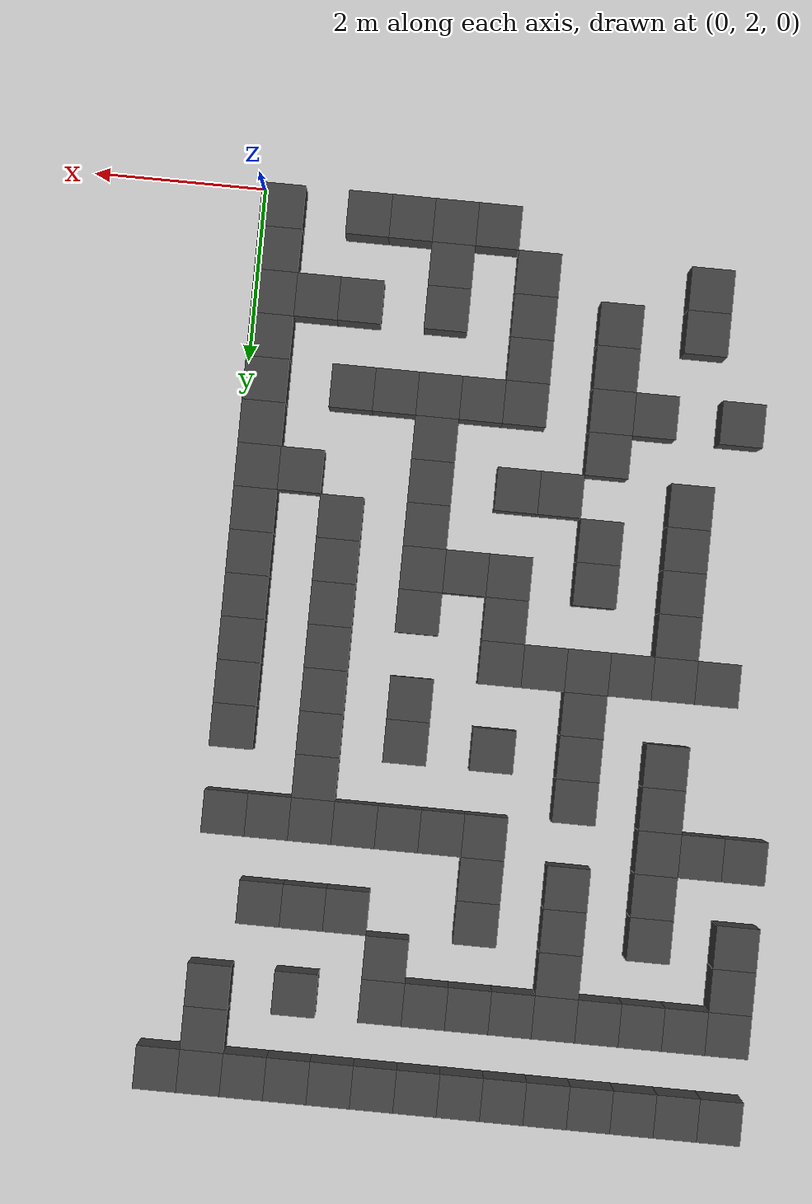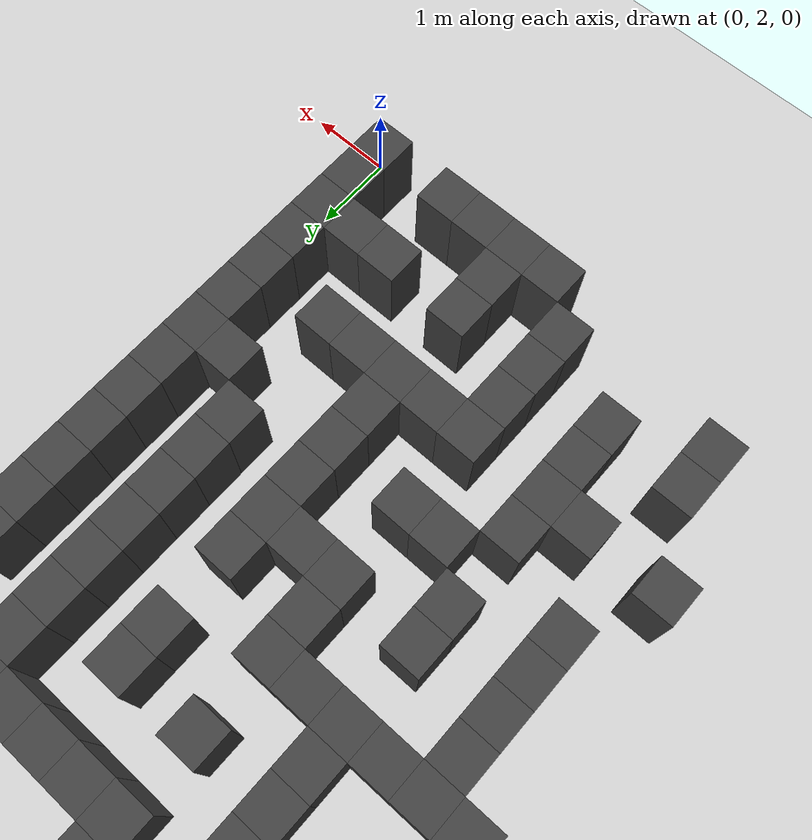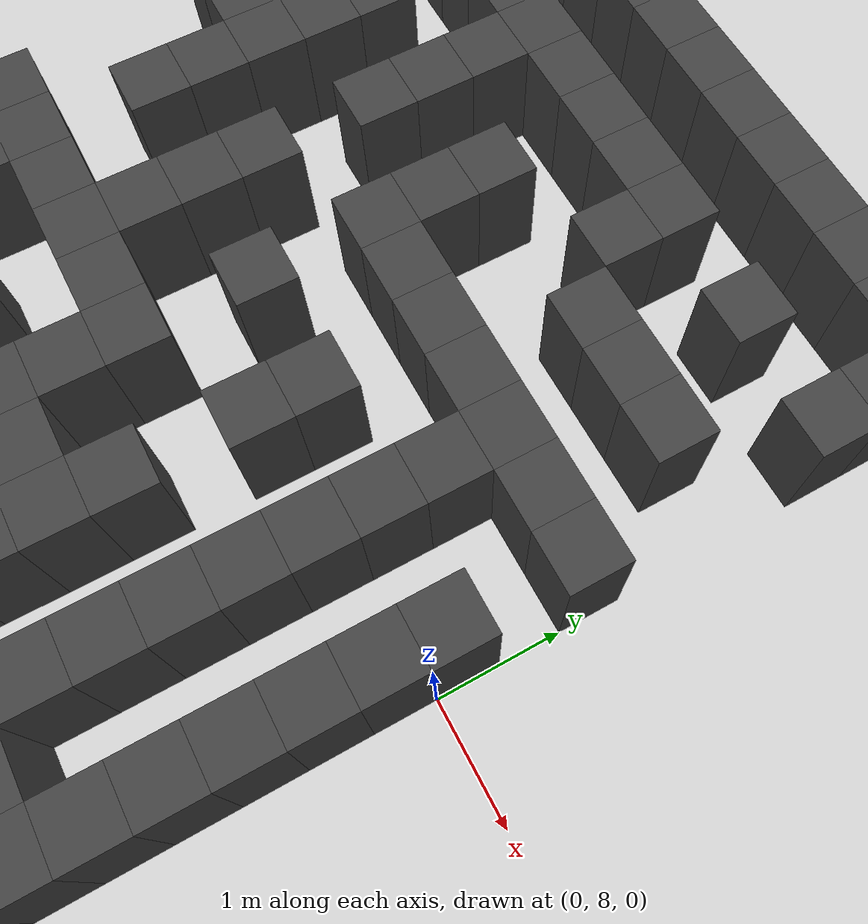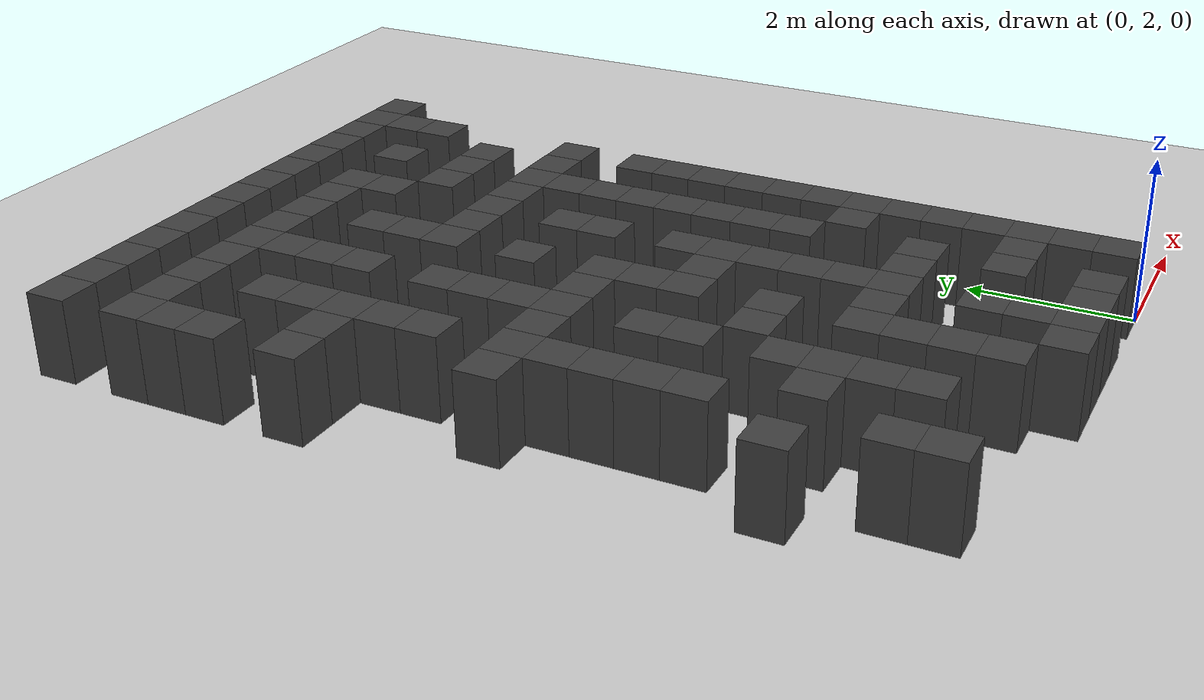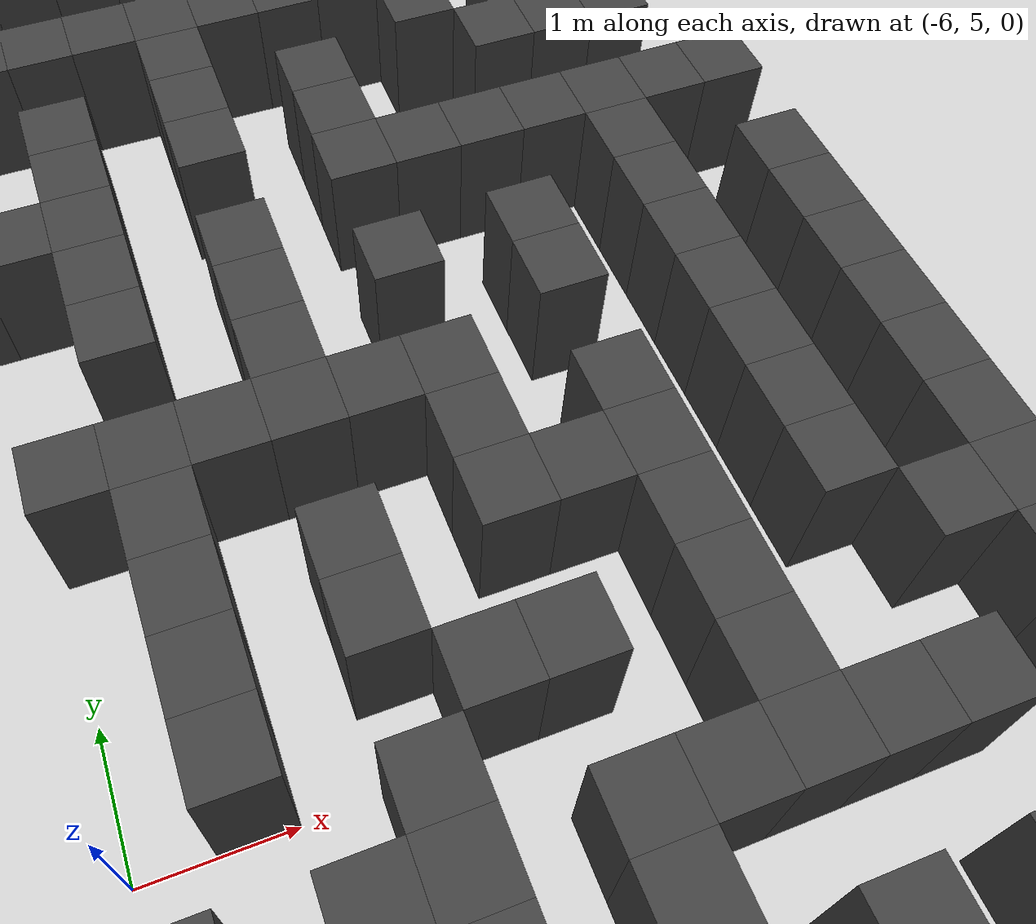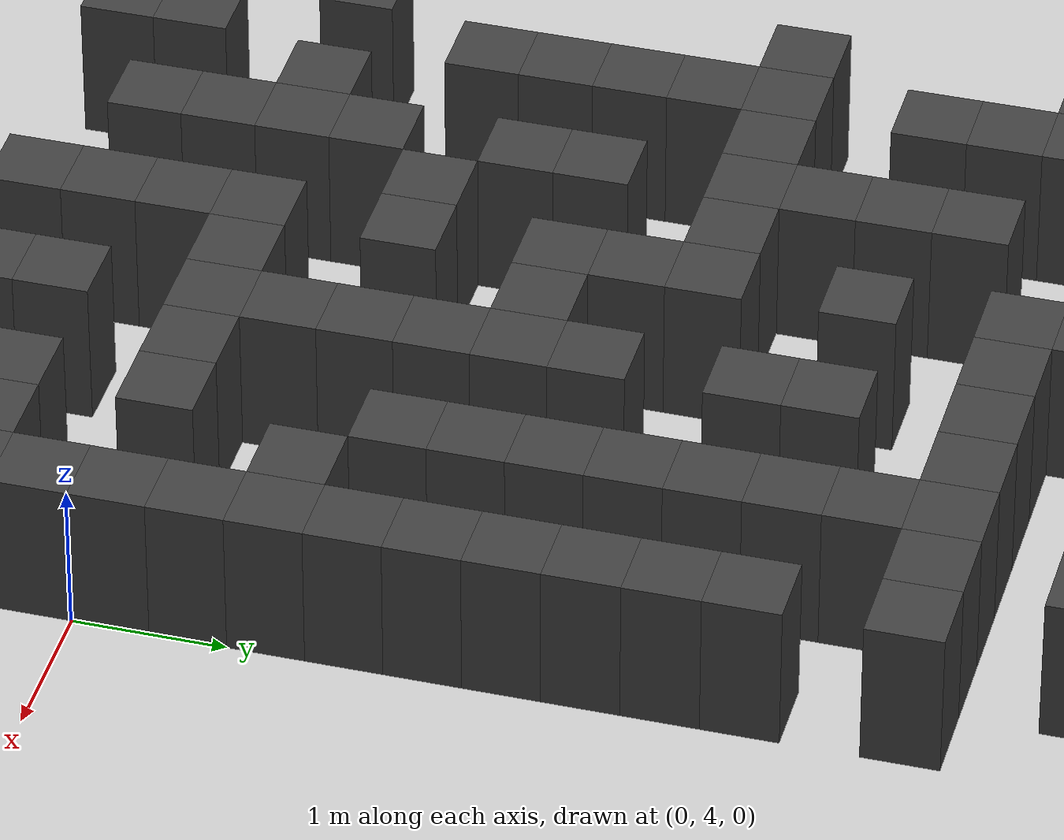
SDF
<sdf version="1.7">
 <world name="map_16668">
  <model name="ground_plane">
   <static>true</static>
   <link name="link">
    <collision name="collision">
     <geometry><plane><normal>0 0 1</normal><size>200 200</size></plane></geometry>
    </collision>
    <visual name="visual">
     <geometry><plane><normal>0 0 1</normal><size>200 200</size></plane></geometry>
     <material><ambient>0.8 0.8 0.8 1</ambient><diffuse>0.8 0.8 0.8 1</diffuse></material>
    </visual>
   </link>
  </model>
  <model name="maze_environment">
   <static>true</static>
   <link name="wall_12">
    <pose>-6.250 12.250 0.500 0 0 0</pose>
    <collision name="col"><geometry><box><size>0.5 0.5 1.0</size></box></geometry></collision>
    <visual name="vis">
     <geometry><box><size>0.5 0.5 1.0</size></box></geometry>
     <material><ambient>0.15 0.15 0.15 1</ambient><diffuse>0.25 0.25 0.25 1</diffuse></material>
    </visual>
   </link>
   <link name="wall_13">
    <pose>-5.750 12.250 0.500 0 0 0</pose>
    <collision name="col"><geometry><box><size>0.5 0.5 1.0</size></box></geometry></collision>
    <visual name="vis">
     <geometry><box><size>0.5 0.5 1.0</size></box></geometry>
     <material><ambient>0.15 0.15 0.15 1</ambient><diffuse>0.25 0.25 0.25 1</diffuse></material>
    </visual>
   </link>
   <link name="wall_14">
    <pose>-5.250 12.250 0.500 0 0 0</pose>
    <collision name="col"><geometry><box><size>0.5 0.5 1.0</size></box></geometry></collision>
    <visual name="vis">
     <geometry><box><size>0.5 0.5 1.0</size></box></geometry>
     <material><ambient>0.15 0.15 0.15 1</ambient><diffuse>0.25 0.25 0.25 1</diffuse></material>
    </visual>
   </link>
   <link name="wall_15">
    <pose>-4.750 12.250 0.500 0 0 0</pose>
    <collision name="col"><geometry><box><size>0.5 0.5 1.0</size></box></geometry></collision>
    <visual name="vis">
     <geometry><box><size>0.5 0.5 1.0</size></box></geometry>
     <material><ambient>0.15 0.15 0.15 1</ambient><diffuse>0.25 0.25 0.25 1</diffuse></material>
    </visual>
   </link>
   <link name="wall_16">
    <pose>-4.250 12.250 0.500 0 0 0</pose>
    <collision name="col"><geometry><box><size>0.5 0.5 1.0</size></box></geometry></collision>
    <visual name="vis">
     <geometry><box><size>0.5 0.5 1.0</size></box></geometry>
     <material><ambient>0.15 0.15 0.15 1</ambient><diffuse>0.25 0.25 0.25 1</diffuse></material>
    </visual>
   </link>
   <link name="wall_17">
    <pose>-3.750 12.250 0.500 0 0 0</pose>
    <collision name="col"><geometry><box><size>0.5 0.5 1.0</size></box></geometry></collision>
    <visual name="vis">
     <geometry><box><size>0.5 0.5 1.0</size></box></geometry>
     <material><ambient>0.15 0.15 0.15 1</ambient><diffuse>0.25 0.25 0.25 1</diffuse></material>
    </visual>
   </link>
   <link name="wall_18">
    <pose>-3.250 12.250 0.500 0 0 0</pose>
    <collision name="col"><geometry><box><size>0.5 0.5 1.0</size></box></geometry></collision>
    <visual name="vis">
     <geometry><box><size>0.5 0.5 1.0</size></box></geometry>
     <material><ambient>0.15 0.15 0.15 1</ambient><diffuse>0.25 0.25 0.25 1</diffuse></material>
    </visual>
   </link>
   <link name="wall_19">
    <pose>-2.750 12.250 0.500 0 0 0</pose>
    <collision name="col"><geometry><box><size>0.5 0.5 1.0</size></box></geometry></collision>
    <visual name="vis">
     <geometry><box><size>0.5 0.5 1.0</size></box></geometry>
     <material><ambient>0.15 0.15 0.15 1</ambient><diffuse>0.25 0.25 0.25 1</diffuse></material>
    </visual>
   </link>
   <link name="wall_20">
    <pose>-2.250 12.250 0.500 0 0 0</pose>
    <collision name="col"><geometry><box><size>0.5 0.5 1.0</size></box></geometry></collision>
    <visual name="vis">
     <geometry><box><size>0.5 0.5 1.0</size></box></geometry>
     <material><ambient>0.15 0.15 0.15 1</ambient><diffuse>0.25 0.25 0.25 1</diffuse></material>
    </visual>
   </link>
   <link name="wall_21">
    <pose>-1.750 12.250 0.500 0 0 0</pose>
    <collision name="col"><geometry><box><size>0.5 0.5 1.0</size></box></geometry></collision>
    <visual name="vis">
     <geometry><box><size>0.5 0.5 1.0</size></box></geometry>
     <material><ambient>0.15 0.15 0.15 1</ambient><diffuse>0.25 0.25 0.25 1</diffuse></material>
    </visual>
   </link>
   <link name="wall_22">
    <pose>-1.250 12.250 0.500 0 0 0</pose>
    <collision name="col"><geometry><box><size>0.5 0.5 1.0</size></box></geometry></collision>
    <visual name="vis">
     <geometry><box><size>0.5 0.5 1.0</size></box></geometry>
     <material><ambient>0.15 0.15 0.15 1</ambient><diffuse>0.25 0.25 0.25 1</diffuse></material>
    </visual>
   </link>
   <link name="wall_23">
    <pose>-0.750 12.250 0.500 0 0 0</pose>
    <collision name="col"><geometry><box><size>0.5 0.5 1.0</size></box></geometry></collision>
    <visual name="vis">
     <geometry><box><size>0.5 0.5 1.0</size></box></geometry>
     <material><ambient>0.15 0.15 0.15 1</ambient><diffuse>0.25 0.25 0.25 1</diffuse></material>
    </visual>
   </link>
   <link name="wall_24">
    <pose>-0.250 12.250 0.500 0 0 0</pose>
    <collision name="col"><geometry><box><size>0.5 0.5 1.0</size></box></geometry></collision>
    <visual name="vis">
     <geometry><box><size>0.5 0.5 1.0</size></box></geometry>
     <material><ambient>0.15 0.15 0.15 1</ambient><diffuse>0.25 0.25 0.25 1</diffuse></material>
    </visual>
   </link>
   <link name="wall_25">
    <pose>0.250 12.250 0.500 0 0 0</pose>
    <collision name="col"><geometry><box><size>0.5 0.5 1.0</size></box></geometry></collision>
    <visual name="vis">
     <geometry><box><size>0.5 0.5 1.0</size></box></geometry>
     <material><ambient>0.15 0.15 0.15 1</ambient><diffuse>0.25 0.25 0.25 1</diffuse></material>
    </visual>
   </link>
   <link name="wall_53">
    <pose>-0.250 11.750 0.500 0 0 0</pose>
    <collision name="col"><geometry><box><size>0.5 0.5 1.0</size></box></geometry></collision>
    <visual name="vis">
     <geometry><box><size>0.5 0.5 1.0</size></box></geometry>
     <material><ambient>0.15 0.15 0.15 1</ambient><diffuse>0.25 0.25 0.25 1</diffuse></material>
    </visual>
   </link>
   <link name="wall_65">
    <pose>-6.250 11.250 0.500 0 0 0</pose>
    <collision name="col"><geometry><box><size>0.5 0.5 1.0</size></box></geometry></collision>
    <visual name="vis">
     <geometry><box><size>0.5 0.5 1.0</size></box></geometry>
     <material><ambient>0.15 0.15 0.15 1</ambient><diffuse>0.25 0.25 0.25 1</diffuse></material>
    </visual>
   </link>
   <link name="wall_66">
    <pose>-5.750 11.250 0.500 0 0 0</pose>
    <collision name="col"><geometry><box><size>0.5 0.5 1.0</size></box></geometry></collision>
    <visual name="vis">
     <geometry><box><size>0.5 0.5 1.0</size></box></geometry>
     <material><ambient>0.15 0.15 0.15 1</ambient><diffuse>0.25 0.25 0.25 1</diffuse></material>
    </visual>
   </link>
   <link name="wall_67">
    <pose>-5.250 11.250 0.500 0 0 0</pose>
    <collision name="col"><geometry><box><size>0.5 0.5 1.0</size></box></geometry></collision>
    <visual name="vis">
     <geometry><box><size>0.5 0.5 1.0</size></box></geometry>
     <material><ambient>0.15 0.15 0.15 1</ambient><diffuse>0.25 0.25 0.25 1</diffuse></material>
    </visual>
   </link>
   <link name="wall_68">
    <pose>-4.750 11.250 0.500 0 0 0</pose>
    <collision name="col"><geometry><box><size>0.5 0.5 1.0</size></box></geometry></collision>
    <visual name="vis">
     <geometry><box><size>0.5 0.5 1.0</size></box></geometry>
     <material><ambient>0.15 0.15 0.15 1</ambient><diffuse>0.25 0.25 0.25 1</diffuse></material>
    </visual>
   </link>
   <link name="wall_69">
    <pose>-4.250 11.250 0.500 0 0 0</pose>
    <collision name="col"><geometry><box><size>0.5 0.5 1.0</size></box></geometry></collision>
    <visual name="vis">
     <geometry><box><size>0.5 0.5 1.0</size></box></geometry>
     <material><ambient>0.15 0.15 0.15 1</ambient><diffuse>0.25 0.25 0.25 1</diffuse></material>
    </visual>
   </link>
   <link name="wall_70">
    <pose>-3.750 11.250 0.500 0 0 0</pose>
    <collision name="col"><geometry><box><size>0.5 0.5 1.0</size></box></geometry></collision>
    <visual name="vis">
     <geometry><box><size>0.5 0.5 1.0</size></box></geometry>
     <material><ambient>0.15 0.15 0.15 1</ambient><diffuse>0.25 0.25 0.25 1</diffuse></material>
    </visual>
   </link>
   <link name="wall_71">
    <pose>-3.250 11.250 0.500 0 0 0</pose>
    <collision name="col"><geometry><box><size>0.5 0.5 1.0</size></box></geometry></collision>
    <visual name="vis">
     <geometry><box><size>0.5 0.5 1.0</size></box></geometry>
     <material><ambient>0.15 0.15 0.15 1</ambient><diffuse>0.25 0.25 0.25 1</diffuse></material>
    </visual>
   </link>
   <link name="wall_72">
    <pose>-2.750 11.250 0.500 0 0 0</pose>
    <collision name="col"><geometry><box><size>0.5 0.5 1.0</size></box></geometry></collision>
    <visual name="vis">
     <geometry><box><size>0.5 0.5 1.0</size></box></geometry>
     <material><ambient>0.15 0.15 0.15 1</ambient><diffuse>0.25 0.25 0.25 1</diffuse></material>
    </visual>
   </link>
   <link name="wall_73">
    <pose>-2.250 11.250 0.500 0 0 0</pose>
    <collision name="col"><geometry><box><size>0.5 0.5 1.0</size></box></geometry></collision>
    <visual name="vis">
     <geometry><box><size>0.5 0.5 1.0</size></box></geometry>
     <material><ambient>0.15 0.15 0.15 1</ambient><diffuse>0.25 0.25 0.25 1</diffuse></material>
    </visual>
   </link>
   <link name="wall_74">
    <pose>-1.250 11.250 0.500 0 0 0</pose>
    <collision name="col"><geometry><box><size>0.5 0.5 1.0</size></box></geometry></collision>
    <visual name="vis">
     <geometry><box><size>0.5 0.5 1.0</size></box></geometry>
     <material><ambient>0.15 0.15 0.15 1</ambient><diffuse>0.25 0.25 0.25 1</diffuse></material>
    </visual>
   </link>
   <link name="wall_75">
    <pose>-0.250 11.250 0.500 0 0 0</pose>
    <collision name="col"><geometry><box><size>0.5 0.5 1.0</size></box></geometry></collision>
    <visual name="vis">
     <geometry><box><size>0.5 0.5 1.0</size></box></geometry>
     <material><ambient>0.15 0.15 0.15 1</ambient><diffuse>0.25 0.25 0.25 1</diffuse></material>
    </visual>
   </link>
   <link name="wall_97">
    <pose>-6.250 10.750 0.500 0 0 0</pose>
    <collision name="col"><geometry><box><size>0.5 0.5 1.0</size></box></geometry></collision>
    <visual name="vis">
     <geometry><box><size>0.5 0.5 1.0</size></box></geometry>
     <material><ambient>0.15 0.15 0.15 1</ambient><diffuse>0.25 0.25 0.25 1</diffuse></material>
    </visual>
   </link>
   <link name="wall_98">
    <pose>-4.250 10.750 0.500 0 0 0</pose>
    <collision name="col"><geometry><box><size>0.5 0.5 1.0</size></box></geometry></collision>
    <visual name="vis">
     <geometry><box><size>0.5 0.5 1.0</size></box></geometry>
     <material><ambient>0.15 0.15 0.15 1</ambient><diffuse>0.25 0.25 0.25 1</diffuse></material>
    </visual>
   </link>
   <link name="wall_99">
    <pose>-2.250 10.750 0.500 0 0 0</pose>
    <collision name="col"><geometry><box><size>0.5 0.5 1.0</size></box></geometry></collision>
    <visual name="vis">
     <geometry><box><size>0.5 0.5 1.0</size></box></geometry>
     <material><ambient>0.15 0.15 0.15 1</ambient><diffuse>0.25 0.25 0.25 1</diffuse></material>
    </visual>
   </link>
   <link name="wall_118">
    <pose>-6.250 10.250 0.500 0 0 0</pose>
    <collision name="col"><geometry><box><size>0.5 0.5 1.0</size></box></geometry></collision>
    <visual name="vis">
     <geometry><box><size>0.5 0.5 1.0</size></box></geometry>
     <material><ambient>0.15 0.15 0.15 1</ambient><diffuse>0.25 0.25 0.25 1</diffuse></material>
    </visual>
   </link>
   <link name="wall_119">
    <pose>-5.250 10.250 0.500 0 0 0</pose>
    <collision name="col"><geometry><box><size>0.5 0.5 1.0</size></box></geometry></collision>
    <visual name="vis">
     <geometry><box><size>0.5 0.5 1.0</size></box></geometry>
     <material><ambient>0.15 0.15 0.15 1</ambient><diffuse>0.25 0.25 0.25 1</diffuse></material>
    </visual>
   </link>
   <link name="wall_120">
    <pose>-4.250 10.250 0.500 0 0 0</pose>
    <collision name="col"><geometry><box><size>0.5 0.5 1.0</size></box></geometry></collision>
    <visual name="vis">
     <geometry><box><size>0.5 0.5 1.0</size></box></geometry>
     <material><ambient>0.15 0.15 0.15 1</ambient><diffuse>0.25 0.25 0.25 1</diffuse></material>
    </visual>
   </link>
   <link name="wall_121">
    <pose>-3.250 10.250 0.500 0 0 0</pose>
    <collision name="col"><geometry><box><size>0.5 0.5 1.0</size></box></geometry></collision>
    <visual name="vis">
     <geometry><box><size>0.5 0.5 1.0</size></box></geometry>
     <material><ambient>0.15 0.15 0.15 1</ambient><diffuse>0.25 0.25 0.25 1</diffuse></material>
    </visual>
   </link>
   <link name="wall_122">
    <pose>-1.750 10.250 0.500 0 0 0</pose>
    <collision name="col"><geometry><box><size>0.5 0.5 1.0</size></box></geometry></collision>
    <visual name="vis">
     <geometry><box><size>0.5 0.5 1.0</size></box></geometry>
     <material><ambient>0.15 0.15 0.15 1</ambient><diffuse>0.25 0.25 0.25 1</diffuse></material>
    </visual>
   </link>
   <link name="wall_123">
    <pose>-1.250 10.250 0.500 0 0 0</pose>
    <collision name="col"><geometry><box><size>0.5 0.5 1.0</size></box></geometry></collision>
    <visual name="vis">
     <geometry><box><size>0.5 0.5 1.0</size></box></geometry>
     <material><ambient>0.15 0.15 0.15 1</ambient><diffuse>0.25 0.25 0.25 1</diffuse></material>
    </visual>
   </link>
   <link name="wall_124">
    <pose>-0.750 10.250 0.500 0 0 0</pose>
    <collision name="col"><geometry><box><size>0.5 0.5 1.0</size></box></geometry></collision>
    <visual name="vis">
     <geometry><box><size>0.5 0.5 1.0</size></box></geometry>
     <material><ambient>0.15 0.15 0.15 1</ambient><diffuse>0.25 0.25 0.25 1</diffuse></material>
    </visual>
   </link>
   <link name="wall_145">
    <pose>-5.250 9.750 0.500 0 0 0</pose>
    <collision name="col"><geometry><box><size>0.5 0.5 1.0</size></box></geometry></collision>
    <visual name="vis">
     <geometry><box><size>0.5 0.5 1.0</size></box></geometry>
     <material><ambient>0.15 0.15 0.15 1</ambient><diffuse>0.25 0.25 0.25 1</diffuse></material>
    </visual>
   </link>
   <link name="wall_146">
    <pose>-4.250 9.750 0.500 0 0 0</pose>
    <collision name="col"><geometry><box><size>0.5 0.5 1.0</size></box></geometry></collision>
    <visual name="vis">
     <geometry><box><size>0.5 0.5 1.0</size></box></geometry>
     <material><ambient>0.15 0.15 0.15 1</ambient><diffuse>0.25 0.25 0.25 1</diffuse></material>
    </visual>
   </link>
   <link name="wall_147">
    <pose>-3.250 9.750 0.500 0 0 0</pose>
    <collision name="col"><geometry><box><size>0.5 0.5 1.0</size></box></geometry></collision>
    <visual name="vis">
     <geometry><box><size>0.5 0.5 1.0</size></box></geometry>
     <material><ambient>0.15 0.15 0.15 1</ambient><diffuse>0.25 0.25 0.25 1</diffuse></material>
    </visual>
   </link>
   <link name="wall_162">
    <pose>-6.250 9.250 0.500 0 0 0</pose>
    <collision name="col"><geometry><box><size>0.5 0.5 1.0</size></box></geometry></collision>
    <visual name="vis">
     <geometry><box><size>0.5 0.5 1.0</size></box></geometry>
     <material><ambient>0.15 0.15 0.15 1</ambient><diffuse>0.25 0.25 0.25 1</diffuse></material>
    </visual>
   </link>
   <link name="wall_163">
    <pose>-5.750 9.250 0.500 0 0 0</pose>
    <collision name="col"><geometry><box><size>0.5 0.5 1.0</size></box></geometry></collision>
    <visual name="vis">
     <geometry><box><size>0.5 0.5 1.0</size></box></geometry>
     <material><ambient>0.15 0.15 0.15 1</ambient><diffuse>0.25 0.25 0.25 1</diffuse></material>
    </visual>
   </link>
   <link name="wall_164">
    <pose>-5.250 9.250 0.500 0 0 0</pose>
    <collision name="col"><geometry><box><size>0.5 0.5 1.0</size></box></geometry></collision>
    <visual name="vis">
     <geometry><box><size>0.5 0.5 1.0</size></box></geometry>
     <material><ambient>0.15 0.15 0.15 1</ambient><diffuse>0.25 0.25 0.25 1</diffuse></material>
    </visual>
   </link>
   <link name="wall_165">
    <pose>-3.250 9.250 0.500 0 0 0</pose>
    <collision name="col"><geometry><box><size>0.5 0.5 1.0</size></box></geometry></collision>
    <visual name="vis">
     <geometry><box><size>0.5 0.5 1.0</size></box></geometry>
     <material><ambient>0.15 0.15 0.15 1</ambient><diffuse>0.25 0.25 0.25 1</diffuse></material>
    </visual>
   </link>
   <link name="wall_166">
    <pose>-2.750 9.250 0.500 0 0 0</pose>
    <collision name="col"><geometry><box><size>0.5 0.5 1.0</size></box></geometry></collision>
    <visual name="vis">
     <geometry><box><size>0.5 0.5 1.0</size></box></geometry>
     <material><ambient>0.15 0.15 0.15 1</ambient><diffuse>0.25 0.25 0.25 1</diffuse></material>
    </visual>
   </link>
   <link name="wall_167">
    <pose>-2.250 9.250 0.500 0 0 0</pose>
    <collision name="col"><geometry><box><size>0.5 0.5 1.0</size></box></geometry></collision>
    <visual name="vis">
     <geometry><box><size>0.5 0.5 1.0</size></box></geometry>
     <material><ambient>0.15 0.15 0.15 1</ambient><diffuse>0.25 0.25 0.25 1</diffuse></material>
    </visual>
   </link>
   <link name="wall_168">
    <pose>-1.750 9.250 0.500 0 0 0</pose>
    <collision name="col"><geometry><box><size>0.5 0.5 1.0</size></box></geometry></collision>
    <visual name="vis">
     <geometry><box><size>0.5 0.5 1.0</size></box></geometry>
     <material><ambient>0.15 0.15 0.15 1</ambient><diffuse>0.25 0.25 0.25 1</diffuse></material>
    </visual>
   </link>
   <link name="wall_169">
    <pose>-1.250 9.250 0.500 0 0 0</pose>
    <collision name="col"><geometry><box><size>0.5 0.5 1.0</size></box></geometry></collision>
    <visual name="vis">
     <geometry><box><size>0.5 0.5 1.0</size></box></geometry>
     <material><ambient>0.15 0.15 0.15 1</ambient><diffuse>0.25 0.25 0.25 1</diffuse></material>
    </visual>
   </link>
   <link name="wall_170">
    <pose>-0.750 9.250 0.500 0 0 0</pose>
    <collision name="col"><geometry><box><size>0.5 0.5 1.0</size></box></geometry></collision>
    <visual name="vis">
     <geometry><box><size>0.5 0.5 1.0</size></box></geometry>
     <material><ambient>0.15 0.15 0.15 1</ambient><diffuse>0.25 0.25 0.25 1</diffuse></material>
    </visual>
   </link>
   <link name="wall_171">
    <pose>-0.250 9.250 0.500 0 0 0</pose>
    <collision name="col"><geometry><box><size>0.5 0.5 1.0</size></box></geometry></collision>
    <visual name="vis">
     <geometry><box><size>0.5 0.5 1.0</size></box></geometry>
     <material><ambient>0.15 0.15 0.15 1</ambient><diffuse>0.25 0.25 0.25 1</diffuse></material>
    </visual>
   </link>
   <link name="wall_193">
    <pose>-5.250 8.750 0.500 0 0 0</pose>
    <collision name="col"><geometry><box><size>0.5 0.5 1.0</size></box></geometry></collision>
    <visual name="vis">
     <geometry><box><size>0.5 0.5 1.0</size></box></geometry>
     <material><ambient>0.15 0.15 0.15 1</ambient><diffuse>0.25 0.25 0.25 1</diffuse></material>
    </visual>
   </link>
   <link name="wall_194">
    <pose>-4.250 8.750 0.500 0 0 0</pose>
    <collision name="col"><geometry><box><size>0.5 0.5 1.0</size></box></geometry></collision>
    <visual name="vis">
     <geometry><box><size>0.5 0.5 1.0</size></box></geometry>
     <material><ambient>0.15 0.15 0.15 1</ambient><diffuse>0.25 0.25 0.25 1</diffuse></material>
    </visual>
   </link>
   <link name="wall_195">
    <pose>-1.250 8.750 0.500 0 0 0</pose>
    <collision name="col"><geometry><box><size>0.5 0.5 1.0</size></box></geometry></collision>
    <visual name="vis">
     <geometry><box><size>0.5 0.5 1.0</size></box></geometry>
     <material><ambient>0.15 0.15 0.15 1</ambient><diffuse>0.25 0.25 0.25 1</diffuse></material>
    </visual>
   </link>
   <link name="wall_211">
    <pose>-5.250 8.250 0.500 0 0 0</pose>
    <collision name="col"><geometry><box><size>0.5 0.5 1.0</size></box></geometry></collision>
    <visual name="vis">
     <geometry><box><size>0.5 0.5 1.0</size></box></geometry>
     <material><ambient>0.15 0.15 0.15 1</ambient><diffuse>0.25 0.25 0.25 1</diffuse></material>
    </visual>
   </link>
   <link name="wall_212">
    <pose>-4.250 8.250 0.500 0 0 0</pose>
    <collision name="col"><geometry><box><size>0.5 0.5 1.0</size></box></geometry></collision>
    <visual name="vis">
     <geometry><box><size>0.5 0.5 1.0</size></box></geometry>
     <material><ambient>0.15 0.15 0.15 1</ambient><diffuse>0.25 0.25 0.25 1</diffuse></material>
    </visual>
   </link>
   <link name="wall_213">
    <pose>-3.250 8.250 0.500 0 0 0</pose>
    <collision name="col"><geometry><box><size>0.5 0.5 1.0</size></box></geometry></collision>
    <visual name="vis">
     <geometry><box><size>0.5 0.5 1.0</size></box></geometry>
     <material><ambient>0.15 0.15 0.15 1</ambient><diffuse>0.25 0.25 0.25 1</diffuse></material>
    </visual>
   </link>
   <link name="wall_214">
    <pose>-2.250 8.250 0.500 0 0 0</pose>
    <collision name="col"><geometry><box><size>0.5 0.5 1.0</size></box></geometry></collision>
    <visual name="vis">
     <geometry><box><size>0.5 0.5 1.0</size></box></geometry>
     <material><ambient>0.15 0.15 0.15 1</ambient><diffuse>0.25 0.25 0.25 1</diffuse></material>
    </visual>
   </link>
   <link name="wall_215">
    <pose>-1.250 8.250 0.500 0 0 0</pose>
    <collision name="col"><geometry><box><size>0.5 0.5 1.0</size></box></geometry></collision>
    <visual name="vis">
     <geometry><box><size>0.5 0.5 1.0</size></box></geometry>
     <material><ambient>0.15 0.15 0.15 1</ambient><diffuse>0.25 0.25 0.25 1</diffuse></material>
    </visual>
   </link>
   <link name="wall_216">
    <pose>-0.250 8.250 0.500 0 0 0</pose>
    <collision name="col"><geometry><box><size>0.5 0.5 1.0</size></box></geometry></collision>
    <visual name="vis">
     <geometry><box><size>0.5 0.5 1.0</size></box></geometry>
     <material><ambient>0.15 0.15 0.15 1</ambient><diffuse>0.25 0.25 0.25 1</diffuse></material>
    </visual>
   </link>
   <link name="wall_239">
    <pose>-4.250 7.750 0.500 0 0 0</pose>
    <collision name="col"><geometry><box><size>0.5 0.5 1.0</size></box></geometry></collision>
    <visual name="vis">
     <geometry><box><size>0.5 0.5 1.0</size></box></geometry>
     <material><ambient>0.15 0.15 0.15 1</ambient><diffuse>0.25 0.25 0.25 1</diffuse></material>
    </visual>
   </link>
   <link name="wall_240">
    <pose>-2.250 7.750 0.500 0 0 0</pose>
    <collision name="col"><geometry><box><size>0.5 0.5 1.0</size></box></geometry></collision>
    <visual name="vis">
     <geometry><box><size>0.5 0.5 1.0</size></box></geometry>
     <material><ambient>0.15 0.15 0.15 1</ambient><diffuse>0.25 0.25 0.25 1</diffuse></material>
    </visual>
   </link>
   <link name="wall_241">
    <pose>-1.250 7.750 0.500 0 0 0</pose>
    <collision name="col"><geometry><box><size>0.5 0.5 1.0</size></box></geometry></collision>
    <visual name="vis">
     <geometry><box><size>0.5 0.5 1.0</size></box></geometry>
     <material><ambient>0.15 0.15 0.15 1</ambient><diffuse>0.25 0.25 0.25 1</diffuse></material>
    </visual>
   </link>
   <link name="wall_242">
    <pose>-0.250 7.750 0.500 0 0 0</pose>
    <collision name="col"><geometry><box><size>0.5 0.5 1.0</size></box></geometry></collision>
    <visual name="vis">
     <geometry><box><size>0.5 0.5 1.0</size></box></geometry>
     <material><ambient>0.15 0.15 0.15 1</ambient><diffuse>0.25 0.25 0.25 1</diffuse></material>
    </visual>
   </link>
   <link name="wall_260">
    <pose>-5.750 7.250 0.500 0 0 0</pose>
    <collision name="col"><geometry><box><size>0.5 0.5 1.0</size></box></geometry></collision>
    <visual name="vis">
     <geometry><box><size>0.5 0.5 1.0</size></box></geometry>
     <material><ambient>0.15 0.15 0.15 1</ambient><diffuse>0.25 0.25 0.25 1</diffuse></material>
    </visual>
   </link>
   <link name="wall_261">
    <pose>-5.250 7.250 0.500 0 0 0</pose>
    <collision name="col"><geometry><box><size>0.5 0.5 1.0</size></box></geometry></collision>
    <visual name="vis">
     <geometry><box><size>0.5 0.5 1.0</size></box></geometry>
     <material><ambient>0.15 0.15 0.15 1</ambient><diffuse>0.25 0.25 0.25 1</diffuse></material>
    </visual>
   </link>
   <link name="wall_262">
    <pose>-4.750 7.250 0.500 0 0 0</pose>
    <collision name="col"><geometry><box><size>0.5 0.5 1.0</size></box></geometry></collision>
    <visual name="vis">
     <geometry><box><size>0.5 0.5 1.0</size></box></geometry>
     <material><ambient>0.15 0.15 0.15 1</ambient><diffuse>0.25 0.25 0.25 1</diffuse></material>
    </visual>
   </link>
   <link name="wall_263">
    <pose>-4.250 7.250 0.500 0 0 0</pose>
    <collision name="col"><geometry><box><size>0.5 0.5 1.0</size></box></geometry></collision>
    <visual name="vis">
     <geometry><box><size>0.5 0.5 1.0</size></box></geometry>
     <material><ambient>0.15 0.15 0.15 1</ambient><diffuse>0.25 0.25 0.25 1</diffuse></material>
    </visual>
   </link>
   <link name="wall_264">
    <pose>-3.750 7.250 0.500 0 0 0</pose>
    <collision name="col"><geometry><box><size>0.5 0.5 1.0</size></box></geometry></collision>
    <visual name="vis">
     <geometry><box><size>0.5 0.5 1.0</size></box></geometry>
     <material><ambient>0.15 0.15 0.15 1</ambient><diffuse>0.25 0.25 0.25 1</diffuse></material>
    </visual>
   </link>
   <link name="wall_265">
    <pose>-3.250 7.250 0.500 0 0 0</pose>
    <collision name="col"><geometry><box><size>0.5 0.5 1.0</size></box></geometry></collision>
    <visual name="vis">
     <geometry><box><size>0.5 0.5 1.0</size></box></geometry>
     <material><ambient>0.15 0.15 0.15 1</ambient><diffuse>0.25 0.25 0.25 1</diffuse></material>
    </visual>
   </link>
   <link name="wall_266">
    <pose>-1.250 7.250 0.500 0 0 0</pose>
    <collision name="col"><geometry><box><size>0.5 0.5 1.0</size></box></geometry></collision>
    <visual name="vis">
     <geometry><box><size>0.5 0.5 1.0</size></box></geometry>
     <material><ambient>0.15 0.15 0.15 1</ambient><diffuse>0.25 0.25 0.25 1</diffuse></material>
    </visual>
   </link>
   <link name="wall_267">
    <pose>-0.250 7.250 0.500 0 0 0</pose>
    <collision name="col"><geometry><box><size>0.5 0.5 1.0</size></box></geometry></collision>
    <visual name="vis">
     <geometry><box><size>0.5 0.5 1.0</size></box></geometry>
     <material><ambient>0.15 0.15 0.15 1</ambient><diffuse>0.25 0.25 0.25 1</diffuse></material>
    </visual>
   </link>
   <link name="wall_285">
    <pose>-5.250 6.750 0.500 0 0 0</pose>
    <collision name="col"><geometry><box><size>0.5 0.5 1.0</size></box></geometry></collision>
    <visual name="vis">
     <geometry><box><size>0.5 0.5 1.0</size></box></geometry>
     <material><ambient>0.15 0.15 0.15 1</ambient><diffuse>0.25 0.25 0.25 1</diffuse></material>
    </visual>
   </link>
   <link name="wall_286">
    <pose>-3.250 6.750 0.500 0 0 0</pose>
    <collision name="col"><geometry><box><size>0.5 0.5 1.0</size></box></geometry></collision>
    <visual name="vis">
     <geometry><box><size>0.5 0.5 1.0</size></box></geometry>
     <material><ambient>0.15 0.15 0.15 1</ambient><diffuse>0.25 0.25 0.25 1</diffuse></material>
    </visual>
   </link>
   <link name="wall_287">
    <pose>-2.250 6.750 0.500 0 0 0</pose>
    <collision name="col"><geometry><box><size>0.5 0.5 1.0</size></box></geometry></collision>
    <visual name="vis">
     <geometry><box><size>0.5 0.5 1.0</size></box></geometry>
     <material><ambient>0.15 0.15 0.15 1</ambient><diffuse>0.25 0.25 0.25 1</diffuse></material>
    </visual>
   </link>
   <link name="wall_288">
    <pose>-1.250 6.750 0.500 0 0 0</pose>
    <collision name="col"><geometry><box><size>0.5 0.5 1.0</size></box></geometry></collision>
    <visual name="vis">
     <geometry><box><size>0.5 0.5 1.0</size></box></geometry>
     <material><ambient>0.15 0.15 0.15 1</ambient><diffuse>0.25 0.25 0.25 1</diffuse></material>
    </visual>
   </link>
   <link name="wall_289">
    <pose>-0.250 6.750 0.500 0 0 0</pose>
    <collision name="col"><geometry><box><size>0.5 0.5 1.0</size></box></geometry></collision>
    <visual name="vis">
     <geometry><box><size>0.5 0.5 1.0</size></box></geometry>
     <material><ambient>0.15 0.15 0.15 1</ambient><diffuse>0.25 0.25 0.25 1</diffuse></material>
    </visual>
   </link>
   <link name="wall_305">
    <pose>-5.250 6.250 0.500 0 0 0</pose>
    <collision name="col"><geometry><box><size>0.5 0.5 1.0</size></box></geometry></collision>
    <visual name="vis">
     <geometry><box><size>0.5 0.5 1.0</size></box></geometry>
     <material><ambient>0.15 0.15 0.15 1</ambient><diffuse>0.25 0.25 0.25 1</diffuse></material>
    </visual>
   </link>
   <link name="wall_306">
    <pose>-4.250 6.250 0.500 0 0 0</pose>
    <collision name="col"><geometry><box><size>0.5 0.5 1.0</size></box></geometry></collision>
    <visual name="vis">
     <geometry><box><size>0.5 0.5 1.0</size></box></geometry>
     <material><ambient>0.15 0.15 0.15 1</ambient><diffuse>0.25 0.25 0.25 1</diffuse></material>
    </visual>
   </link>
   <link name="wall_307">
    <pose>-3.250 6.250 0.500 0 0 0</pose>
    <collision name="col"><geometry><box><size>0.5 0.5 1.0</size></box></geometry></collision>
    <visual name="vis">
     <geometry><box><size>0.5 0.5 1.0</size></box></geometry>
     <material><ambient>0.15 0.15 0.15 1</ambient><diffuse>0.25 0.25 0.25 1</diffuse></material>
    </visual>
   </link>
   <link name="wall_308">
    <pose>-2.750 6.250 0.500 0 0 0</pose>
    <collision name="col"><geometry><box><size>0.5 0.5 1.0</size></box></geometry></collision>
    <visual name="vis">
     <geometry><box><size>0.5 0.5 1.0</size></box></geometry>
     <material><ambient>0.15 0.15 0.15 1</ambient><diffuse>0.25 0.25 0.25 1</diffuse></material>
    </visual>
   </link>
   <link name="wall_309">
    <pose>-2.250 6.250 0.500 0 0 0</pose>
    <collision name="col"><geometry><box><size>0.5 0.5 1.0</size></box></geometry></collision>
    <visual name="vis">
     <geometry><box><size>0.5 0.5 1.0</size></box></geometry>
     <material><ambient>0.15 0.15 0.15 1</ambient><diffuse>0.25 0.25 0.25 1</diffuse></material>
    </visual>
   </link>
   <link name="wall_310">
    <pose>-1.250 6.250 0.500 0 0 0</pose>
    <collision name="col"><geometry><box><size>0.5 0.5 1.0</size></box></geometry></collision>
    <visual name="vis">
     <geometry><box><size>0.5 0.5 1.0</size></box></geometry>
     <material><ambient>0.15 0.15 0.15 1</ambient><diffuse>0.25 0.25 0.25 1</diffuse></material>
    </visual>
   </link>
   <link name="wall_311">
    <pose>-0.250 6.250 0.500 0 0 0</pose>
    <collision name="col"><geometry><box><size>0.5 0.5 1.0</size></box></geometry></collision>
    <visual name="vis">
     <geometry><box><size>0.5 0.5 1.0</size></box></geometry>
     <material><ambient>0.15 0.15 0.15 1</ambient><diffuse>0.25 0.25 0.25 1</diffuse></material>
    </visual>
   </link>
   <link name="wall_333">
    <pose>-5.250 5.750 0.500 0 0 0</pose>
    <collision name="col"><geometry><box><size>0.5 0.5 1.0</size></box></geometry></collision>
    <visual name="vis">
     <geometry><box><size>0.5 0.5 1.0</size></box></geometry>
     <material><ambient>0.15 0.15 0.15 1</ambient><diffuse>0.25 0.25 0.25 1</diffuse></material>
    </visual>
   </link>
   <link name="wall_334">
    <pose>-4.250 5.750 0.500 0 0 0</pose>
    <collision name="col"><geometry><box><size>0.5 0.5 1.0</size></box></geometry></collision>
    <visual name="vis">
     <geometry><box><size>0.5 0.5 1.0</size></box></geometry>
     <material><ambient>0.15 0.15 0.15 1</ambient><diffuse>0.25 0.25 0.25 1</diffuse></material>
    </visual>
   </link>
   <link name="wall_335">
    <pose>-2.250 5.750 0.500 0 0 0</pose>
    <collision name="col"><geometry><box><size>0.5 0.5 1.0</size></box></geometry></collision>
    <visual name="vis">
     <geometry><box><size>0.5 0.5 1.0</size></box></geometry>
     <material><ambient>0.15 0.15 0.15 1</ambient><diffuse>0.25 0.25 0.25 1</diffuse></material>
    </visual>
   </link>
   <link name="wall_336">
    <pose>-1.250 5.750 0.500 0 0 0</pose>
    <collision name="col"><geometry><box><size>0.5 0.5 1.0</size></box></geometry></collision>
    <visual name="vis">
     <geometry><box><size>0.5 0.5 1.0</size></box></geometry>
     <material><ambient>0.15 0.15 0.15 1</ambient><diffuse>0.25 0.25 0.25 1</diffuse></material>
    </visual>
   </link>
   <link name="wall_337">
    <pose>-0.250 5.750 0.500 0 0 0</pose>
    <collision name="col"><geometry><box><size>0.5 0.5 1.0</size></box></geometry></collision>
    <visual name="vis">
     <geometry><box><size>0.5 0.5 1.0</size></box></geometry>
     <material><ambient>0.15 0.15 0.15 1</ambient><diffuse>0.25 0.25 0.25 1</diffuse></material>
    </visual>
   </link>
   <link name="wall_352">
    <pose>-5.250 5.250 0.500 0 0 0</pose>
    <collision name="col"><geometry><box><size>0.5 0.5 1.0</size></box></geometry></collision>
    <visual name="vis">
     <geometry><box><size>0.5 0.5 1.0</size></box></geometry>
     <material><ambient>0.15 0.15 0.15 1</ambient><diffuse>0.25 0.25 0.25 1</diffuse></material>
    </visual>
   </link>
   <link name="wall_353">
    <pose>-3.750 5.250 0.500 0 0 0</pose>
    <collision name="col"><geometry><box><size>0.5 0.5 1.0</size></box></geometry></collision>
    <visual name="vis">
     <geometry><box><size>0.5 0.5 1.0</size></box></geometry>
     <material><ambient>0.15 0.15 0.15 1</ambient><diffuse>0.25 0.25 0.25 1</diffuse></material>
    </visual>
   </link>
   <link name="wall_354">
    <pose>-3.250 5.250 0.500 0 0 0</pose>
    <collision name="col"><geometry><box><size>0.5 0.5 1.0</size></box></geometry></collision>
    <visual name="vis">
     <geometry><box><size>0.5 0.5 1.0</size></box></geometry>
     <material><ambient>0.15 0.15 0.15 1</ambient><diffuse>0.25 0.25 0.25 1</diffuse></material>
    </visual>
   </link>
   <link name="wall_355">
    <pose>-2.250 5.250 0.500 0 0 0</pose>
    <collision name="col"><geometry><box><size>0.5 0.5 1.0</size></box></geometry></collision>
    <visual name="vis">
     <geometry><box><size>0.5 0.5 1.0</size></box></geometry>
     <material><ambient>0.15 0.15 0.15 1</ambient><diffuse>0.25 0.25 0.25 1</diffuse></material>
    </visual>
   </link>
   <link name="wall_356">
    <pose>-0.750 5.250 0.500 0 0 0</pose>
    <collision name="col"><geometry><box><size>0.5 0.5 1.0</size></box></geometry></collision>
    <visual name="vis">
     <geometry><box><size>0.5 0.5 1.0</size></box></geometry>
     <material><ambient>0.15 0.15 0.15 1</ambient><diffuse>0.25 0.25 0.25 1</diffuse></material>
    </visual>
   </link>
   <link name="wall_357">
    <pose>-0.250 5.250 0.500 0 0 0</pose>
    <collision name="col"><geometry><box><size>0.5 0.5 1.0</size></box></geometry></collision>
    <visual name="vis">
     <geometry><box><size>0.5 0.5 1.0</size></box></geometry>
     <material><ambient>0.15 0.15 0.15 1</ambient><diffuse>0.25 0.25 0.25 1</diffuse></material>
    </visual>
   </link>
   <link name="wall_380">
    <pose>-4.250 4.750 0.500 0 0 0</pose>
    <collision name="col"><geometry><box><size>0.5 0.5 1.0</size></box></geometry></collision>
    <visual name="vis">
     <geometry><box><size>0.5 0.5 1.0</size></box></geometry>
     <material><ambient>0.15 0.15 0.15 1</ambient><diffuse>0.25 0.25 0.25 1</diffuse></material>
    </visual>
   </link>
   <link name="wall_381">
    <pose>-2.250 4.750 0.500 0 0 0</pose>
    <collision name="col"><geometry><box><size>0.5 0.5 1.0</size></box></geometry></collision>
    <visual name="vis">
     <geometry><box><size>0.5 0.5 1.0</size></box></geometry>
     <material><ambient>0.15 0.15 0.15 1</ambient><diffuse>0.25 0.25 0.25 1</diffuse></material>
    </visual>
   </link>
   <link name="wall_382">
    <pose>-0.250 4.750 0.500 0 0 0</pose>
    <collision name="col"><geometry><box><size>0.5 0.5 1.0</size></box></geometry></collision>
    <visual name="vis">
     <geometry><box><size>0.5 0.5 1.0</size></box></geometry>
     <material><ambient>0.15 0.15 0.15 1</ambient><diffuse>0.25 0.25 0.25 1</diffuse></material>
    </visual>
   </link>
   <link name="wall_396">
    <pose>-5.750 4.250 0.500 0 0 0</pose>
    <collision name="col"><geometry><box><size>0.5 0.5 1.0</size></box></geometry></collision>
    <visual name="vis">
     <geometry><box><size>0.5 0.5 1.0</size></box></geometry>
     <material><ambient>0.15 0.15 0.15 1</ambient><diffuse>0.25 0.25 0.25 1</diffuse></material>
    </visual>
   </link>
   <link name="wall_397">
    <pose>-4.750 4.250 0.500 0 0 0</pose>
    <collision name="col"><geometry><box><size>0.5 0.5 1.0</size></box></geometry></collision>
    <visual name="vis">
     <geometry><box><size>0.5 0.5 1.0</size></box></geometry>
     <material><ambient>0.15 0.15 0.15 1</ambient><diffuse>0.25 0.25 0.25 1</diffuse></material>
    </visual>
   </link>
   <link name="wall_398">
    <pose>-4.250 4.250 0.500 0 0 0</pose>
    <collision name="col"><geometry><box><size>0.5 0.5 1.0</size></box></geometry></collision>
    <visual name="vis">
     <geometry><box><size>0.5 0.5 1.0</size></box></geometry>
     <material><ambient>0.15 0.15 0.15 1</ambient><diffuse>0.25 0.25 0.25 1</diffuse></material>
    </visual>
   </link>
   <link name="wall_399">
    <pose>-3.250 4.250 0.500 0 0 0</pose>
    <collision name="col"><geometry><box><size>0.5 0.5 1.0</size></box></geometry></collision>
    <visual name="vis">
     <geometry><box><size>0.5 0.5 1.0</size></box></geometry>
     <material><ambient>0.15 0.15 0.15 1</ambient><diffuse>0.25 0.25 0.25 1</diffuse></material>
    </visual>
   </link>
   <link name="wall_400">
    <pose>-2.750 4.250 0.500 0 0 0</pose>
    <collision name="col"><geometry><box><size>0.5 0.5 1.0</size></box></geometry></collision>
    <visual name="vis">
     <geometry><box><size>0.5 0.5 1.0</size></box></geometry>
     <material><ambient>0.15 0.15 0.15 1</ambient><diffuse>0.25 0.25 0.25 1</diffuse></material>
    </visual>
   </link>
   <link name="wall_401">
    <pose>-2.250 4.250 0.500 0 0 0</pose>
    <collision name="col"><geometry><box><size>0.5 0.5 1.0</size></box></geometry></collision>
    <visual name="vis">
     <geometry><box><size>0.5 0.5 1.0</size></box></geometry>
     <material><ambient>0.15 0.15 0.15 1</ambient><diffuse>0.25 0.25 0.25 1</diffuse></material>
    </visual>
   </link>
   <link name="wall_402">
    <pose>-1.750 4.250 0.500 0 0 0</pose>
    <collision name="col"><geometry><box><size>0.5 0.5 1.0</size></box></geometry></collision>
    <visual name="vis">
     <geometry><box><size>0.5 0.5 1.0</size></box></geometry>
     <material><ambient>0.15 0.15 0.15 1</ambient><diffuse>0.25 0.25 0.25 1</diffuse></material>
    </visual>
   </link>
   <link name="wall_403">
    <pose>-1.250 4.250 0.500 0 0 0</pose>
    <collision name="col"><geometry><box><size>0.5 0.5 1.0</size></box></geometry></collision>
    <visual name="vis">
     <geometry><box><size>0.5 0.5 1.0</size></box></geometry>
     <material><ambient>0.15 0.15 0.15 1</ambient><diffuse>0.25 0.25 0.25 1</diffuse></material>
    </visual>
   </link>
   <link name="wall_404">
    <pose>-0.250 4.250 0.500 0 0 0</pose>
    <collision name="col"><geometry><box><size>0.5 0.5 1.0</size></box></geometry></collision>
    <visual name="vis">
     <geometry><box><size>0.5 0.5 1.0</size></box></geometry>
     <material><ambient>0.15 0.15 0.15 1</ambient><diffuse>0.25 0.25 0.25 1</diffuse></material>
    </visual>
   </link>
   <link name="wall_425">
    <pose>-4.250 3.750 0.500 0 0 0</pose>
    <collision name="col"><geometry><box><size>0.5 0.5 1.0</size></box></geometry></collision>
    <visual name="vis">
     <geometry><box><size>0.5 0.5 1.0</size></box></geometry>
     <material><ambient>0.15 0.15 0.15 1</ambient><diffuse>0.25 0.25 0.25 1</diffuse></material>
    </visual>
   </link>
   <link name="wall_426">
    <pose>-3.250 3.750 0.500 0 0 0</pose>
    <collision name="col"><geometry><box><size>0.5 0.5 1.0</size></box></geometry></collision>
    <visual name="vis">
     <geometry><box><size>0.5 0.5 1.0</size></box></geometry>
     <material><ambient>0.15 0.15 0.15 1</ambient><diffuse>0.25 0.25 0.25 1</diffuse></material>
    </visual>
   </link>
   <link name="wall_427">
    <pose>-0.250 3.750 0.500 0 0 0</pose>
    <collision name="col"><geometry><box><size>0.5 0.5 1.0</size></box></geometry></collision>
    <visual name="vis">
     <geometry><box><size>0.5 0.5 1.0</size></box></geometry>
     <material><ambient>0.15 0.15 0.15 1</ambient><diffuse>0.25 0.25 0.25 1</diffuse></material>
    </visual>
   </link>
   <link name="wall_443">
    <pose>-5.250 3.250 0.500 0 0 0</pose>
    <collision name="col"><geometry><box><size>0.5 0.5 1.0</size></box></geometry></collision>
    <visual name="vis">
     <geometry><box><size>0.5 0.5 1.0</size></box></geometry>
     <material><ambient>0.15 0.15 0.15 1</ambient><diffuse>0.25 0.25 0.25 1</diffuse></material>
    </visual>
   </link>
   <link name="wall_444">
    <pose>-4.250 3.250 0.500 0 0 0</pose>
    <collision name="col"><geometry><box><size>0.5 0.5 1.0</size></box></geometry></collision>
    <visual name="vis">
     <geometry><box><size>0.5 0.5 1.0</size></box></geometry>
     <material><ambient>0.15 0.15 0.15 1</ambient><diffuse>0.25 0.25 0.25 1</diffuse></material>
    </visual>
   </link>
   <link name="wall_445">
    <pose>-3.250 3.250 0.500 0 0 0</pose>
    <collision name="col"><geometry><box><size>0.5 0.5 1.0</size></box></geometry></collision>
    <visual name="vis">
     <geometry><box><size>0.5 0.5 1.0</size></box></geometry>
     <material><ambient>0.15 0.15 0.15 1</ambient><diffuse>0.25 0.25 0.25 1</diffuse></material>
    </visual>
   </link>
   <link name="wall_446">
    <pose>-2.250 3.250 0.500 0 0 0</pose>
    <collision name="col"><geometry><box><size>0.5 0.5 1.0</size></box></geometry></collision>
    <visual name="vis">
     <geometry><box><size>0.5 0.5 1.0</size></box></geometry>
     <material><ambient>0.15 0.15 0.15 1</ambient><diffuse>0.25 0.25 0.25 1</diffuse></material>
    </visual>
   </link>
   <link name="wall_447">
    <pose>-1.250 3.250 0.500 0 0 0</pose>
    <collision name="col"><geometry><box><size>0.5 0.5 1.0</size></box></geometry></collision>
    <visual name="vis">
     <geometry><box><size>0.5 0.5 1.0</size></box></geometry>
     <material><ambient>0.15 0.15 0.15 1</ambient><diffuse>0.25 0.25 0.25 1</diffuse></material>
    </visual>
   </link>
   <link name="wall_448">
    <pose>-0.750 3.250 0.500 0 0 0</pose>
    <collision name="col"><geometry><box><size>0.5 0.5 1.0</size></box></geometry></collision>
    <visual name="vis">
     <geometry><box><size>0.5 0.5 1.0</size></box></geometry>
     <material><ambient>0.15 0.15 0.15 1</ambient><diffuse>0.25 0.25 0.25 1</diffuse></material>
    </visual>
   </link>
   <link name="wall_449">
    <pose>-0.250 3.250 0.500 0 0 0</pose>
    <collision name="col"><geometry><box><size>0.5 0.5 1.0</size></box></geometry></collision>
    <visual name="vis">
     <geometry><box><size>0.5 0.5 1.0</size></box></geometry>
     <material><ambient>0.15 0.15 0.15 1</ambient><diffuse>0.25 0.25 0.25 1</diffuse></material>
    </visual>
   </link>
   <link name="wall_470">
    <pose>-5.250 2.750 0.500 0 0 0</pose>
    <collision name="col"><geometry><box><size>0.5 0.5 1.0</size></box></geometry></collision>
    <visual name="vis">
     <geometry><box><size>0.5 0.5 1.0</size></box></geometry>
     <material><ambient>0.15 0.15 0.15 1</ambient><diffuse>0.25 0.25 0.25 1</diffuse></material>
    </visual>
   </link>
   <link name="wall_471">
    <pose>-3.250 2.750 0.500 0 0 0</pose>
    <collision name="col"><geometry><box><size>0.5 0.5 1.0</size></box></geometry></collision>
    <visual name="vis">
     <geometry><box><size>0.5 0.5 1.0</size></box></geometry>
     <material><ambient>0.15 0.15 0.15 1</ambient><diffuse>0.25 0.25 0.25 1</diffuse></material>
    </visual>
   </link>
   <link name="wall_472">
    <pose>-2.250 2.750 0.500 0 0 0</pose>
    <collision name="col"><geometry><box><size>0.5 0.5 1.0</size></box></geometry></collision>
    <visual name="vis">
     <geometry><box><size>0.5 0.5 1.0</size></box></geometry>
     <material><ambient>0.15 0.15 0.15 1</ambient><diffuse>0.25 0.25 0.25 1</diffuse></material>
    </visual>
   </link>
   <link name="wall_473">
    <pose>-0.250 2.750 0.500 0 0 0</pose>
    <collision name="col"><geometry><box><size>0.5 0.5 1.0</size></box></geometry></collision>
    <visual name="vis">
     <geometry><box><size>0.5 0.5 1.0</size></box></geometry>
     <material><ambient>0.15 0.15 0.15 1</ambient><diffuse>0.25 0.25 0.25 1</diffuse></material>
    </visual>
   </link>
   <link name="wall_494">
    <pose>-2.750 2.250 0.500 0 0 0</pose>
    <collision name="col"><geometry><box><size>0.5 0.5 1.0</size></box></geometry></collision>
    <visual name="vis">
     <geometry><box><size>0.5 0.5 1.0</size></box></geometry>
     <material><ambient>0.15 0.15 0.15 1</ambient><diffuse>0.25 0.25 0.25 1</diffuse></material>
    </visual>
   </link>
   <link name="wall_495">
    <pose>-2.250 2.250 0.500 0 0 0</pose>
    <collision name="col"><geometry><box><size>0.5 0.5 1.0</size></box></geometry></collision>
    <visual name="vis">
     <geometry><box><size>0.5 0.5 1.0</size></box></geometry>
     <material><ambient>0.15 0.15 0.15 1</ambient><diffuse>0.25 0.25 0.25 1</diffuse></material>
    </visual>
   </link>
   <link name="wall_496">
    <pose>-1.750 2.250 0.500 0 0 0</pose>
    <collision name="col"><geometry><box><size>0.5 0.5 1.0</size></box></geometry></collision>
    <visual name="vis">
     <geometry><box><size>0.5 0.5 1.0</size></box></geometry>
     <material><ambient>0.15 0.15 0.15 1</ambient><diffuse>0.25 0.25 0.25 1</diffuse></material>
    </visual>
   </link>
   <link name="wall_497">
    <pose>-1.250 2.250 0.500 0 0 0</pose>
    <collision name="col"><geometry><box><size>0.5 0.5 1.0</size></box></geometry></collision>
    <visual name="vis">
     <geometry><box><size>0.5 0.5 1.0</size></box></geometry>
     <material><ambient>0.15 0.15 0.15 1</ambient><diffuse>0.25 0.25 0.25 1</diffuse></material>
    </visual>
   </link>
   <link name="wall_498">
    <pose>-0.250 2.250 0.500 0 0 0</pose>
    <collision name="col"><geometry><box><size>0.5 0.5 1.0</size></box></geometry></collision>
    <visual name="vis">
     <geometry><box><size>0.5 0.5 1.0</size></box></geometry>
     <material><ambient>0.15 0.15 0.15 1</ambient><diffuse>0.25 0.25 0.25 1</diffuse></material>
    </visual>
   </link>
  </model>
 </world>
</sdf>
